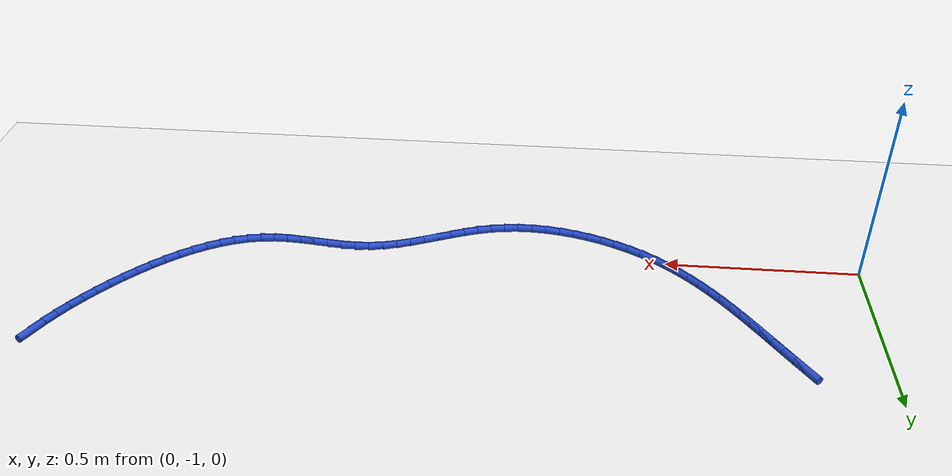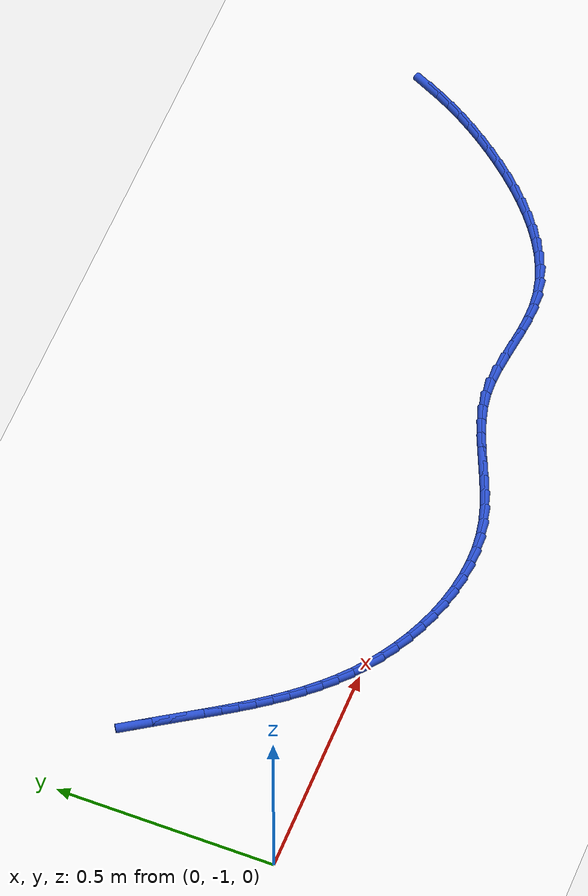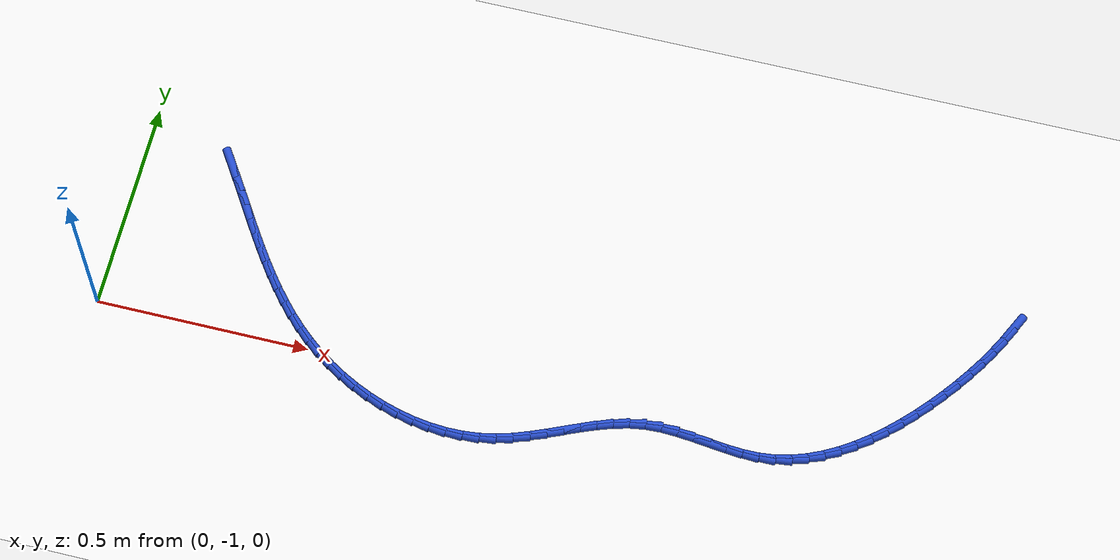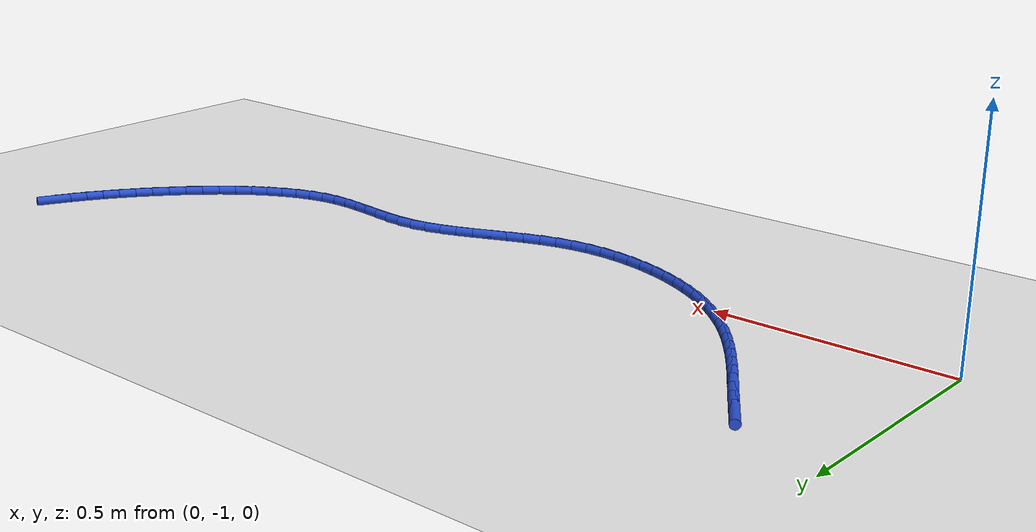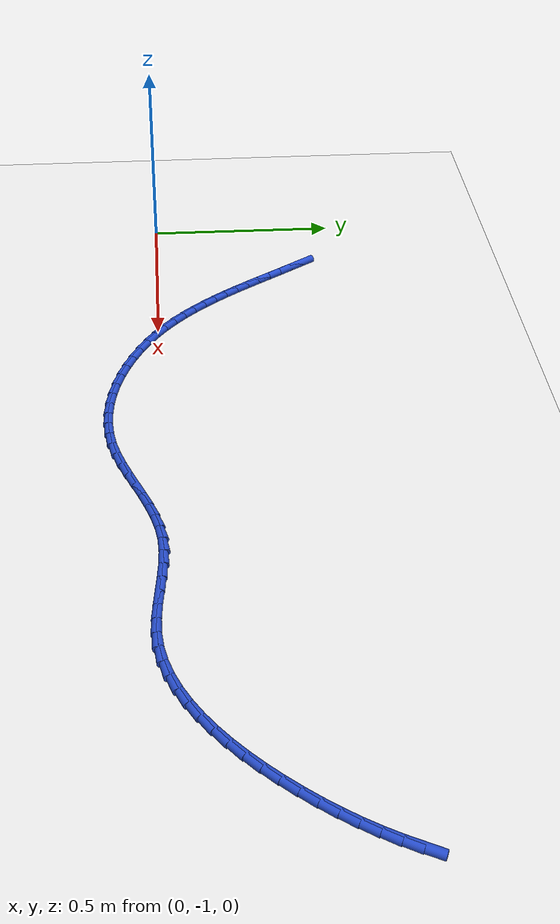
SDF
<sdf version="1.6">
 <world name="default">
  <model name="ground_plane">
   <static>1</static>
   <link name="link">
    <collision name="collision">
     <geometry><plane><normal>0 0 1</normal><size>100 100</size></plane></geometry>
     <surface><friction><ode><mu>100</mu><mu2>50</mu2></ode></friction></surface>
    </collision>
    <visual name="visual">
     <cast_shadows>0</cast_shadows>
     <geometry><plane><normal>0 0 1</normal><size>100 100</size></plane></geometry>
     <material>
      <script><uri>file://media/materials/scripts/gazebo.material</uri><name>Gazebo/WhiteGlow</name></script>
     </material>
    </visual>
   </link>
  </model>
  <model name="line">
   <link name="link_103">
    <pose>2.043815872189913 -0.5703931284753364 0.01 0 1.57 1.123098447111109</pose>
    <collision name="collision">
     <geometry><cylinder><radius>0.01</radius><length>0.08</length></cylinder></geometry>
    </collision>
    <visual name="visual">
     <material>
      <script><name>Gazebo/Blue</name><uri>file://media/materials/scripts/gazebo.material</uri></script>
     </material>
     <geometry><cylinder><radius>0.01</radius><length>0.08</length></cylinder></geometry>
    </visual>
   </link>
   <link name="link_104">
    <pose>2.0275189907006568 -0.6043294876389869 0.01 0 1.57 1.0777824176923856</pose>
    <collision name="collision">
     <geometry><cylinder><radius>0.01</radius><length>0.08</length></cylinder></geometry>
    </collision>
    <visual name="visual">
     <material>
      <script><name>Gazebo/Blue</name><uri>file://media/materials/scripts/gazebo.material</uri></script>
     </material>
     <geometry><cylinder><radius>0.01</radius><length>0.08</length></cylinder></geometry>
    </visual>
   </link>
   <link name="link_105">
    <pose>2.0095565148327093 -0.6377626169599107 0.01 0 1.57 1.03475909267125</pose>
    <collision name="collision">
     <geometry><cylinder><radius>0.01</radius><length>0.08</length></cylinder></geometry>
    </collision>
    <visual name="visual">
     <material>
      <script><name>Gazebo/Blue</name><uri>file://media/materials/scripts/gazebo.material</uri></script>
     </material>
     <geometry><cylinder><radius>0.01</radius><length>0.08</length></cylinder></geometry>
    </visual>
   </link>
   <link name="link_106">
    <pose>1.9900002288696008 -0.6706825698278273 0.01 0 1.57 0.9939791668865378</pose>
    <collision name="collision">
     <geometry><cylinder><radius>0.01</radius><length>0.08</length></cylinder></geometry>
    </collision>
    <visual name="visual">
     <material>
      <script><name>Gazebo/Blue</name><uri>file://media/materials/scripts/gazebo.material</uri></script>
     </material>
     <geometry><cylinder><radius>0.01</radius><length>0.08</length></cylinder></geometry>
    </visual>
   </link>
   <link name="link_107">
    <pose>1.9689219170948598 -0.7030793996324562 0.01 0 1.57 0.9553695027481955</pose>
    <collision name="collision">
     <geometry><cylinder><radius>0.01</radius><length>0.08</length></cylinder></geometry>
    </collision>
    <visual name="visual">
     <material>
      <script><name>Gazebo/Blue</name><uri>file://media/materials/scripts/gazebo.material</uri></script>
     </material>
     <geometry><cylinder><radius>0.01</radius><length>0.08</length></cylinder></geometry>
    </visual>
   </link>
   <link name="link_108">
    <pose>1.9463933637920148 -0.7349431597635171 0.01 0 1.57 0.9188396998957677</pose>
    <collision name="collision">
     <geometry><cylinder><radius>0.01</radius><length>0.08</length></cylinder></geometry>
    </collision>
    <visual name="visual">
     <material>
      <script><name>Gazebo/Blue</name><uri>file://media/materials/scripts/gazebo.material</uri></script>
     </material>
     <geometry><cylinder><radius>0.01</radius><length>0.08</length></cylinder></geometry>
    </visual>
   </link>
   <link name="link_109">
    <pose>1.922486353244594 -0.7662639036107297 0.01 0 1.57 0.8841720220053177</pose>
    <collision name="collision">
     <geometry><cylinder><radius>0.01</radius><length>0.08</length></cylinder></geometry>
    </collision>
    <visual name="visual">
     <material>
      <script><name>Gazebo/Blue</name><uri>file://media/materials/scripts/gazebo.material</uri></script>
     </material>
     <geometry><cylinder><radius>0.01</radius><length>0.08</length></cylinder></geometry>
    </visual>
   </link>
   <link name="link_110">
    <pose>1.8972721578205738 -0.7970250505231278 0.01 0 1.57 0.8484464112415967</pose>
    <collision name="collision">
     <geometry><cylinder><radius>0.01</radius><length>0.08</length></cylinder></geometry>
    </collision>
    <visual name="visual">
     <material>
      <script><name>Gazebo/Blue</name><uri>file://media/materials/scripts/gazebo.material</uri></script>
     </material>
     <geometry><cylinder><radius>0.01</radius><length>0.08</length></cylinder></geometry>
    </visual>
   </link>
   <link name="link_111">
    <pose>1.8708099795100261 -0.8270535968273974 0.01 0 1.57 0.80837160831257</pose>
    <collision name="collision">
     <geometry><cylinder><radius>0.01</radius><length>0.08</length></cylinder></geometry>
    </collision>
    <visual name="visual">
     <material>
      <script><name>Gazebo/Blue</name><uri>file://media/materials/scripts/gazebo.material</uri></script>
     </material>
     <geometry><cylinder><radius>0.01</radius><length>0.08</length></cylinder></geometry>
    </visual>
   </link>
   <link name="link_112">
    <pose>1.8431467829709898 -0.8560179522278298 0.01 0 1.57 0.7631190631436775</pose>
    <collision name="collision">
     <geometry><cylinder><radius>0.01</radius><length>0.08</length></cylinder></geometry>
    </collision>
    <visual name="visual">
     <material>
      <script><name>Gazebo/Blue</name><uri>file://media/materials/scripts/gazebo.material</uri></script>
     </material>
     <geometry><cylinder><radius>0.01</radius><length>0.08</length></cylinder></geometry>
    </visual>
   </link>
   <link name="link_113">
    <pose>1.8143289875531456 -0.8835794596424247 0.01 0 1.57 0.711875878609958</pose>
    <collision name="collision">
     <geometry><cylinder><radius>0.01</radius><length>0.08</length></cylinder></geometry>
    </collision>
    <visual name="visual">
     <material>
      <script><name>Gazebo/Blue</name><uri>file://media/materials/scripts/gazebo.material</uri></script>
     </material>
     <geometry><cylinder><radius>0.01</radius><length>0.08</length></cylinder></geometry>
    </visual>
   </link>
   <link name="link_114">
    <pose>1.7844030126061758 -0.9093994619891809 0.01 0 1.57 0.6537285058987314</pose>
    <collision name="collision">
     <geometry><cylinder><radius>0.01</radius><length>0.08</length></cylinder></geometry>
    </collision>
    <visual name="visual">
     <material>
      <script><name>Gazebo/Blue</name><uri>file://media/materials/scripts/gazebo.material</uri></script>
     </material>
     <geometry><cylinder><radius>0.01</radius><length>0.08</length></cylinder></geometry>
    </visual>
   </link>
   <link name="link_115">
    <pose>1.7534152774797613 -0.933139302186098 0.01 0 1.57 0.5876918309466606</pose>
    <collision name="collision">
     <geometry><cylinder><radius>0.01</radius><length>0.08</length></cylinder></geometry>
    </collision>
    <visual name="visual">
     <material>
      <script><name>Gazebo/Blue</name><uri>file://media/materials/scripts/gazebo.material</uri></script>
     </material>
     <geometry><cylinder><radius>0.01</radius><length>0.08</length></cylinder></geometry>
    </visual>
   </link>
   <link name="link_116">
    <pose>1.721412201523586 -0.9544603231511744 0.01 0 1.57 0.5127763423273524</pose>
    <collision name="collision">
     <geometry><cylinder><radius>0.01</radius><length>0.08</length></cylinder></geometry>
    </collision>
    <visual name="visual">
     <material>
      <script><name>Gazebo/Blue</name><uri>file://media/materials/scripts/gazebo.material</uri></script>
     </material>
     <geometry><cylinder><radius>0.01</radius><length>0.08</length></cylinder></geometry>
    </visual>
   </link>
   <link name="link_117">
    <pose>1.6884402040873308 -0.9730238678024103 0.01 0 1.57 0.42811363335625413</pose>
    <collision name="collision">
     <geometry><cylinder><radius>0.01</radius><length>0.08</length></cylinder></geometry>
    </collision>
    <visual name="visual">
     <material>
      <script><name>Gazebo/Blue</name><uri>file://media/materials/scripts/gazebo.material</uri></script>
     </material>
     <geometry><cylinder><radius>0.01</radius><length>0.08</length></cylinder></geometry>
    </visual>
   </link>
   <link name="link_118">
    <pose>1.6545457045206766 -0.9884912790578042 0.01 0 1.57 0.33315826096742956</pose>
    <collision name="collision">
     <geometry><cylinder><radius>0.01</radius><length>0.08</length></cylinder></geometry>
    </collision>
    <visual name="visual">
     <material>
      <script><name>Gazebo/Blue</name><uri>file://media/materials/scripts/gazebo.material</uri></script>
     </material>
     <geometry><cylinder><radius>0.01</radius><length>0.08</length></cylinder></geometry>
    </visual>
   </link>
   <link name="link_119">
    <pose>1.6197751221733063 -1.0005238998353556 0.01 0 1.57 0.22796483805336198</pose>
    <collision name="collision">
     <geometry><cylinder><radius>0.01</radius><length>0.08</length></cylinder></geometry>
    </collision>
    <visual name="visual">
     <material>
      <script><name>Gazebo/Blue</name><uri>file://media/materials/scripts/gazebo.material</uri></script>
     </material>
     <geometry><cylinder><radius>0.01</radius><length>0.08</length></cylinder></geometry>
    </visual>
   </link>
   <link name="link_120">
    <pose>1.5841748763949013 -1.0087830730530645 0.01 0 1.57 0.11365759164138071</pose>
    <collision name="collision">
     <geometry><cylinder><radius>0.01</radius><length>0.08</length></cylinder></geometry>
    </collision>
    <visual name="visual">
     <material>
      <script><name>Gazebo/Blue</name><uri>file://media/materials/scripts/gazebo.material</uri></script>
     </material>
     <geometry><cylinder><radius>0.01</radius><length>0.08</length></cylinder></geometry>
    </visual>
   </link>
   <link name="link_121">
    <pose>1.5477920055082115 -1.0129361612194263 0.01 0 1.57 0.006498672244915811</pose>
    <collision name="collision">
     <geometry><cylinder><radius>0.01</radius><length>0.08</length></cylinder></geometry>
    </collision>
    <visual name="visual">
     <material>
      <script><name>Gazebo/Blue</name><uri>file://media/materials/scripts/gazebo.material</uri></script>
     </material>
     <geometry><cylinder><radius>0.01</radius><length>0.08</length></cylinder></geometry>
    </visual>
   </link>
   <link name="link_122">
    <pose>1.5107276866386778 -1.0131770334706485 0.01 0 1.57 -0.06777273559633139</pose>
    <collision name="collision">
     <geometry><cylinder><radius>0.01</radius><length>0.08</length></cylinder></geometry>
    </collision>
    <visual name="visual">
     <material>
      <script><name>Gazebo/Blue</name><uri>file://media/materials/scripts/gazebo.material</uri></script>
     </material>
     <geometry><cylinder><radius>0.01</radius><length>0.08</length></cylinder></geometry>
    </visual>
   </link>
   <link name="link_123">
    <pose>1.4731785986890187 -1.0106283256720263 0.01 0 1.57 -0.10851315325571721</pose>
    <collision name="collision">
     <geometry><cylinder><radius>0.01</radius><length>0.08</length></cylinder></geometry>
    </collision>
    <visual name="visual">
     <material>
      <script><name>Gazebo/Blue</name><uri>file://media/materials/scripts/gazebo.material</uri></script>
     </material>
     <geometry><cylinder><radius>0.01</radius><length>0.08</length></cylinder></geometry>
    </visual>
   </link>
   <link name="link_124">
    <pose>1.435351157134636 -1.0065073630760424 0.01 0 1.57 -0.11755483858322786</pose>
    <collision name="collision">
     <geometry><cylinder><radius>0.01</radius><length>0.08</length></cylinder></geometry>
    </collision>
    <visual name="visual">
     <material>
      <script><name>Gazebo/Blue</name><uri>file://media/materials/scripts/gazebo.material</uri></script>
     </material>
     <geometry><cylinder><radius>0.01</radius><length>0.08</length></cylinder></geometry>
    </visual>
   </link>
   <link name="link_125">
    <pose>1.3974517774509339 -1.0020314709351805 0.01 0 1.57 -0.09539357169882068</pose>
    <collision name="collision">
     <geometry><cylinder><radius>0.01</radius><length>0.08</length></cylinder></geometry>
    </collision>
    <visual name="visual">
     <material>
      <script><name>Gazebo/Blue</name><uri>file://media/materials/scripts/gazebo.material</uri></script>
     </material>
     <geometry><cylinder><radius>0.01</radius><length>0.08</length></cylinder></geometry>
    </visual>
   </link>
   <link name="link_126">
    <pose>1.3596868751133138 -0.9984179745019228 0.01 0 1.57 -0.0409608060134946</pose>
    <collision name="collision">
     <geometry><cylinder><radius>0.01</radius><length>0.08</length></cylinder></geometry>
    </collision>
    <visual name="visual">
     <material>
      <script><name>Gazebo/Blue</name><uri>file://media/materials/scripts/gazebo.material</uri></script>
     </material>
     <geometry><cylinder><radius>0.01</radius><length>0.08</length></cylinder></geometry>
    </visual>
   </link>
   <link name="link_127">
    <pose>1.3222628655971809 -0.9968841990287531 0.01 0 1.57 0.0477789146812295</pose>
    <collision name="collision">
     <geometry><cylinder><radius>0.01</radius><length>0.08</length></cylinder></geometry>
    </collision>
    <visual name="visual">
     <material>
      <script><name>Gazebo/Blue</name><uri>file://media/materials/scripts/gazebo.material</uri></script>
     </material>
     <geometry><cylinder><radius>0.01</radius><length>0.08</length></cylinder></geometry>
    </visual>
   </link>
   <link name="link_128">
    <pose>1.2853861643729765 -0.9986474697404829 0.01 0 1.57 0.16229653123494242</pose>
    <collision name="collision">
     <geometry><cylinder><radius>0.01</radius><length>0.08</length></cylinder></geometry>
    </collision>
    <visual name="visual">
     <material>
      <script><name>Gazebo/Blue</name><uri>file://media/materials/scripts/gazebo.material</uri></script>
     </material>
     <geometry><cylinder><radius>0.01</radius><length>0.08</length></cylinder></geometry>
    </visual>
   </link>
   <link name="link_129">
    <pose>1.2491999702695455 -1.004572476990491 0.01 0 1.57 0.26230809489226437</pose>
    <collision name="collision">
     <geometry><cylinder><radius>0.01</radius><length>0.08</length></cylinder></geometry>
    </collision>
    <visual name="visual">
     <material>
      <script><name>Gazebo/Blue</name><uri>file://media/materials/scripts/gazebo.material</uri></script>
     </material>
     <geometry><cylinder><radius>0.01</radius><length>0.08</length></cylinder></geometry>
    </visual>
   </link>
   <link name="link_130">
    <pose>1.213597856213886 -1.0141314487111877 0.01 0 1.57 0.3368365037299574</pose>
    <collision name="collision">
     <geometry><cylinder><radius>0.01</radius><length>0.08</length></cylinder></geometry>
    </collision>
    <visual name="visual">
     <material>
      <script><name>Gazebo/Blue</name><uri>file://media/materials/scripts/gazebo.material</uri></script>
     </material>
     <geometry><cylinder><radius>0.01</radius><length>0.08</length></cylinder></geometry>
    </visual>
   </link>
   <link name="link_131">
    <pose>1.1784117884674805 -1.0264529587270788 0.01 0 1.57 0.3863502772399196</pose>
    <collision name="collision">
     <geometry><cylinder><radius>0.01</radius><length>0.08</length></cylinder></geometry>
    </collision>
    <visual name="visual">
     <material>
      <script><name>Gazebo/Blue</name><uri>file://media/materials/scripts/gazebo.material</uri></script>
     </material>
     <geometry><cylinder><radius>0.01</radius><length>0.08</length></cylinder></geometry>
    </visual>
   </link>
   <link name="link_132">
    <pose>1.143473733291814 -1.0406655808626701 0.01 0 1.57 0.4119745226320878</pose>
    <collision name="collision">
     <geometry><cylinder><radius>0.01</radius><length>0.08</length></cylinder></geometry>
    </collision>
    <visual name="visual">
     <material>
      <script><name>Gazebo/Blue</name><uri>file://media/materials/scripts/gazebo.material</uri></script>
     </material>
     <geometry><cylinder><radius>0.01</radius><length>0.08</length></cylinder></geometry>
    </visual>
   </link>
   <link name="link_133">
    <pose>1.1086156569483698 -1.0558978889424684 0.01 0 1.57 0.4146092416915735</pose>
    <collision name="collision">
     <geometry><cylinder><radius>0.01</radius><length>0.08</length></cylinder></geometry>
    </collision>
    <visual name="visual">
     <material>
      <script><name>Gazebo/Blue</name><uri>file://media/materials/scripts/gazebo.material</uri></script>
     </material>
     <geometry><cylinder><radius>0.01</radius><length>0.08</length></cylinder></geometry>
    </visual>
   </link>
   <link name="link_134">
    <pose>1.0736695256986315 -1.0712784567909794 0.01 0 1.57 0.3945444406533059</pose>
    <collision name="collision">
     <geometry><cylinder><radius>0.01</radius><length>0.08</length></cylinder></geometry>
    </collision>
    <visual name="visual">
     <material>
      <script><name>Gazebo/Blue</name><uri>file://media/materials/scripts/gazebo.material</uri></script>
     </material>
     <geometry><cylinder><radius>0.01</radius><length>0.08</length></cylinder></geometry>
    </visual>
   </link>
   <link name="link_135">
    <pose>1.0384673058040836 -1.0859358582327097 0.01 0 1.57 0.3514402584502425</pose>
    <collision name="collision">
     <geometry><cylinder><radius>0.01</radius><length>0.08</length></cylinder></geometry>
    </collision>
    <visual name="visual">
     <material>
      <script><name>Gazebo/Blue</name><uri>file://media/materials/scripts/gazebo.material</uri></script>
     </material>
     <geometry><cylinder><radius>0.01</radius><length>0.08</length></cylinder></geometry>
    </visual>
   </link>
   <link name="link_136">
    <pose>1.0028409635262088 -1.098998667092165 0.01 0 1.57 0.2846351685458974</pose>
    <collision name="collision">
     <geometry><cylinder><radius>0.01</radius><length>0.08</length></cylinder></geometry>
    </collision>
    <visual name="visual">
     <material>
      <script><name>Gazebo/Blue</name><uri>file://media/materials/scripts/gazebo.material</uri></script>
     </material>
     <geometry><cylinder><radius>0.01</radius><length>0.08</length></cylinder></geometry>
    </visual>
   </link>
   <link name="link_137">
    <pose>0.9666224651264909 -1.109595457193852 0.01 0 1.57 0.19575811172062058</pose>
    <collision name="collision">
     <geometry><cylinder><radius>0.01</radius><length>0.08</length></cylinder></geometry>
    </collision>
    <visual name="visual">
     <material>
      <script><name>Gazebo/Blue</name><uri>file://media/materials/scripts/gazebo.material</uri></script>
     </material>
     <geometry><cylinder><radius>0.01</radius><length>0.08</length></cylinder></geometry>
    </visual>
   </link>
   <link name="link_138">
    <pose>0.9296694575946891 -1.1169231502674717 0.01 0 1.57 0.10288400276663212</pose>
    <collision name="collision">
     <geometry><cylinder><radius>0.01</radius><length>0.08</length></cylinder></geometry>
    </collision>
    <visual name="visual">
     <material>
      <script><name>Gazebo/Blue</name><uri>file://media/materials/scripts/gazebo.material</uri></script>
     </material>
     <geometry><cylinder><radius>0.01</radius><length>0.08</length></cylinder></geometry>
    </visual>
   </link>
   <link name="link_139">
    <pose>0.8920748260101132 -1.120804741823473 0.01 0 1.57 0.015638144763738884</pose>
    <collision name="collision">
     <geometry><cylinder><radius>0.01</radius><length>0.08</length></cylinder></geometry>
    </collision>
    <visual name="visual">
     <material>
      <script><name>Gazebo/Blue</name><uri>file://media/materials/scripts/gazebo.material</uri></script>
     </material>
     <geometry><cylinder><radius>0.01</radius><length>0.08</length></cylinder></geometry>
    </visual>
   </link>
   <link name="link_140">
    <pose>0.8540577325080257 -1.1213993071032367 0.01 0 1.57 -0.06610515155281814</pose>
    <collision name="collision">
     <geometry><cylinder><radius>0.01</radius><length>0.08</length></cylinder></geometry>
    </collision>
    <visual name="visual">
     <material>
      <script><name>Gazebo/Blue</name><uri>file://media/materials/scripts/gazebo.material</uri></script>
     </material>
     <geometry><cylinder><radius>0.01</radius><length>0.08</length></cylinder></geometry>
    </visual>
   </link>
   <link name="link_141">
    <pose>0.8158385468739566 -1.1188691354456977 0.01 0 1.57 -0.14280371518403365</pose>
    <collision name="collision">
     <geometry><cylinder><radius>0.01</radius><length>0.08</length></cylinder></geometry>
    </collision>
    <visual name="visual">
     <material>
      <script><name>Gazebo/Blue</name><uri>file://media/materials/scripts/gazebo.material</uri></script>
     </material>
     <geometry><cylinder><radius>0.01</radius><length>0.08</length></cylinder></geometry>
    </visual>
   </link>
   <link name="link_142">
    <pose>0.7776376388934343 -1.1133765161897908 0.01 0 1.57 -0.21506941305061053</pose>
    <collision name="collision">
     <geometry><cylinder><radius>0.01</radius><length>0.08</length></cylinder></geometry>
    </collision>
    <visual name="visual">
     <material>
      <script><name>Gazebo/Blue</name><uri>file://media/materials/scripts/gazebo.material</uri></script>
     </material>
     <geometry><cylinder><radius>0.01</radius><length>0.08</length></cylinder></geometry>
    </visual>
   </link>
   <link name="link_143">
    <pose>0.7396753783519892 -1.1050837386744505 0.01 0 1.57 -0.28360243378446776</pose>
    <collision name="collision">
     <geometry><cylinder><radius>0.01</radius><length>0.08</length></cylinder></geometry>
    </collision>
    <visual name="visual">
     <material>
      <script><name>Gazebo/Blue</name><uri>file://media/materials/scripts/gazebo.material</uri></script>
     </material>
     <geometry><cylinder><radius>0.01</radius><length>0.08</length></cylinder></geometry>
    </visual>
   </link>
   <link name="link_144">
    <pose>0.7021721350351503 -1.0941530922386111 0.01 0 1.57 -0.34914829972348743</pose>
    <collision name="collision">
     <geometry><cylinder><radius>0.01</radius><length>0.08</length></cylinder></geometry>
    </collision>
    <visual name="visual">
     <material>
      <script><name>Gazebo/Blue</name><uri>file://media/materials/scripts/gazebo.material</uri></script>
     </material>
     <geometry><cylinder><radius>0.01</radius><length>0.08</length></cylinder></geometry>
    </visual>
   </link>
   <link name="link_145">
    <pose>0.6653482787284467 -1.0807468662212079 0.01 0 1.57 -0.4124740545801683</pose>
    <collision name="collision">
     <geometry><cylinder><radius>0.01</radius><length>0.08</length></cylinder></geometry>
    </collision>
    <visual name="visual">
     <material>
      <script><name>Gazebo/Blue</name><uri>file://media/materials/scripts/gazebo.material</uri></script>
     </material>
     <geometry><cylinder><radius>0.01</radius><length>0.08</length></cylinder></geometry>
    </visual>
   </link>
   <link name="link_146">
    <pose>0.629424179217408 -1.0650273499611749 0.01 0 1.57 -0.4743591090278277</pose>
    <collision name="collision">
     <geometry><cylinder><radius>0.01</radius><length>0.08</length></cylinder></geometry>
    </collision>
    <visual name="visual">
     <material>
      <script><name>Gazebo/Blue</name><uri>file://media/materials/scripts/gazebo.material</uri></script>
     </material>
     <geometry><cylinder><radius>0.01</radius><length>0.08</length></cylinder></geometry>
    </visual>
   </link>
   <link name="link_147">
    <pose>0.5946202062875628 -1.0471568327974465 0.01 0 1.57 -0.5355966649068334</pose>
    <collision name="collision">
     <geometry><cylinder><radius>0.01</radius><length>0.08</length></cylinder></geometry>
    </collision>
    <visual name="visual">
     <material>
      <script><name>Gazebo/Blue</name><uri>file://media/materials/scripts/gazebo.material</uri></script>
     </material>
     <geometry><cylinder><radius>0.01</radius><length>0.08</length></cylinder></geometry>
    </visual>
   </link>
   <link name="link_148">
    <pose>0.5611567297244406 -1.0272976040689576 0.01 0 1.57 -0.5970025032215249</pose>
    <collision name="collision">
     <geometry><cylinder><radius>0.01</radius><length>0.08</length></cylinder></geometry>
    </collision>
    <visual name="visual">
     <material>
      <script><name>Gazebo/Blue</name><uri>file://media/materials/scripts/gazebo.material</uri></script>
     </material>
     <geometry><cylinder><radius>0.01</radius><length>0.08</length></cylinder></geometry>
    </visual>
   </link>
   <link name="link_149">
    <pose>0.5292541193135718 -1.005611953114643 0.01 0 1.57 -0.6590658529135419</pose>
    <collision name="collision">
     <geometry><cylinder><radius>0.01</radius><length>0.08</length></cylinder></geometry>
    </collision>
    <visual name="visual">
     <material>
      <script><name>Gazebo/Blue</name><uri>file://media/materials/scripts/gazebo.material</uri></script>
     </material>
     <geometry><cylinder><radius>0.01</radius><length>0.08</length></cylinder></geometry>
    </visual>
   </link>
   <link name="link_150">
    <pose>0.4991089910280444 -0.9822612601131822 0.01 0 1.57 -0.7186761599216699</pose>
    <collision name="collision">
     <geometry><cylinder><radius>0.01</radius><length>0.08</length></cylinder></geometry>
    </collision>
    <visual name="visual">
     <material>
      <script><name>Gazebo/Blue</name><uri>file://media/materials/scripts/gazebo.material</uri></script>
     </material>
     <geometry><cylinder><radius>0.01</radius><length>0.08</length></cylinder></geometry>
    </visual>
   </link>
   <link name="link_151">
    <pose>0.47068500154511367 -0.9573979888921037 0.01 0 1.57 -0.7732931803973433</pose>
    <collision name="collision">
     <geometry><cylinder><radius>0.01</radius><length>0.08</length></cylinder></geometry>
    </collision>
    <visual name="visual">
     <material>
      <script><name>Gazebo/Blue</name><uri>file://media/materials/scripts/gazebo.material</uri></script>
     </material>
     <geometry><cylinder><radius>0.01</radius><length>0.08</length></cylinder></geometry>
    </visual>
   </link>
   <link name="link_152">
    <pose>0.44381375975897697 -0.9311695492440758 0.01 0 1.57 -0.8223677018696895</pose>
    <collision name="collision">
     <geometry><cylinder><radius>0.01</radius><length>0.08</length></cylinder></geometry>
    </collision>
    <visual name="visual">
     <material>
      <script><name>Gazebo/Blue</name><uri>file://media/materials/scripts/gazebo.material</uri></script>
     </material>
     <geometry><cylinder><radius>0.01</radius><length>0.08</length></cylinder></geometry>
    </visual>
   </link>
   <link name="link_153">
    <pose>0.41832536535742 -0.9037232931979663 0.01 0 1.57 -0.8655650429699907</pose>
    <collision name="collision">
     <geometry><cylinder><radius>0.01</radius><length>0.08</length></cylinder></geometry>
    </collision>
    <visual name="visual">
     <material>
      <script><name>Gazebo/Blue</name><uri>file://media/materials/scripts/gazebo.material</uri></script>
     </material>
     <geometry><cylinder><radius>0.01</radius><length>0.08</length></cylinder></geometry>
    </visual>
   </link>
   <link name="link_154">
    <pose>0.3940499180282283 -0.8752065727826418 0.01 0 1.57 -0.9027072515862394</pose>
    <collision name="collision">
     <geometry><cylinder><radius>0.01</radius><length>0.08</length></cylinder></geometry>
    </collision>
    <visual name="visual">
     <material>
      <script><name>Gazebo/Blue</name><uri>file://media/materials/scripts/gazebo.material</uri></script>
     </material>
     <geometry><cylinder><radius>0.01</radius><length>0.08</length></cylinder></geometry>
    </visual>
   </link>
   <link name="link_155">
    <pose>0.3708175174591891 -0.8457667400269712 0.01 0 1.57 -0.9337320869078803</pose>
    <collision name="collision">
     <geometry><cylinder><radius>0.01</radius><length>0.08</length></cylinder></geometry>
    </collision>
    <visual name="visual">
     <material>
      <script><name>Gazebo/Blue</name><uri>file://media/materials/scripts/gazebo.material</uri></script>
     </material>
     <geometry><cylinder><radius>0.01</radius><length>0.08</length></cylinder></geometry>
    </visual>
   </link>
   <link name="link_156">
    <pose>0.3484582633380876 -0.815551146959821 0.01 0 1.57 -0.9586529178140579</pose>
    <collision name="collision">
     <geometry><cylinder><radius>0.01</radius><length>0.08</length></cylinder></geometry>
    </collision>
    <visual name="visual">
     <material>
      <script><name>Gazebo/Blue</name><uri>file://media/materials/scripts/gazebo.material</uri></script>
     </material>
     <geometry><cylinder><radius>0.01</radius><length>0.08</length></cylinder></geometry>
    </visual>
   </link>
   <link name="link_157">
    <pose>0.32680225535271 -0.7847071456100592 0.01 0 1.57 -0.977523850884411</pose>
    <collision name="collision">
     <geometry><cylinder><radius>0.01</radius><length>0.08</length></cylinder></geometry>
    </collision>
    <visual name="visual">
     <material>
      <script><name>Gazebo/Blue</name><uri>file://media/materials/scripts/gazebo.material</uri></script>
     </material>
     <geometry><cylinder><radius>0.01</radius><length>0.08</length></cylinder></geometry>
    </visual>
   </link>
   <link name="link_158">
    <pose>0.30567959319084237 -0.7533820880065528 0.01 0 1.57 -0.9904119930002606</pose>
    <collision name="collision">
     <geometry><cylinder><radius>0.01</radius><length>0.08</length></cylinder></geometry>
    </collision>
    <visual name="visual">
     <material>
      <script><name>Gazebo/Blue</name><uri>file://media/materials/scripts/gazebo.material</uri></script>
     </material>
     <geometry><cylinder><radius>0.01</radius><length>0.08</length></cylinder></geometry>
    </visual>
   </link>
   <link name="link_159">
    <pose>0.28492037654027014 -0.721723326178169 0.01 0 1.57 -0.9973771777958361</pose>
    <collision name="collision">
     <geometry><cylinder><radius>0.01</radius><length>0.08</length></cylinder></geometry>
    </collision>
    <visual name="visual">
     <material>
      <script><name>Gazebo/Blue</name><uri>file://media/materials/scripts/gazebo.material</uri></script>
     </material>
     <geometry><cylinder><radius>0.01</radius><length>0.08</length></cylinder></geometry>
    </visual>
   </link>
   <link name="link_160">
    <pose>0.2643547050887803 -0.6898782121537765 0.01 0 1.57 -0.9984587073465204</pose>
    <collision name="collision">
     <geometry><cylinder><radius>0.01</radius><length>0.08</length></cylinder></geometry>
    </collision>
    <visual name="visual">
     <material>
      <script><name>Gazebo/Blue</name><uri>file://media/materials/scripts/gazebo.material</uri></script>
     </material>
     <geometry><cylinder><radius>0.01</radius><length>0.08</length></cylinder></geometry>
    </visual>
   </link>
   <link name="link_161">
    <pose>0.24381267852415844 -0.6579940979622421 0.01 0 1.57 -0.9939534324434667</pose>
    <collision name="collision">
     <geometry><cylinder><radius>0.01</radius><length>0.08</length></cylinder></geometry>
    </collision>
    <visual name="visual">
     <material>
      <script><name>Gazebo/Blue</name><uri>file://media/materials/scripts/gazebo.material</uri></script>
     </material>
     <geometry><cylinder><radius>0.01</radius><length>0.08</length></cylinder></geometry>
    </visual>
   </link>
   <link name="link_162">
    <pose>0.22313337248527526 -0.6262123190798197 0.01 0 1.57 -0.9897718285684325</pose>
    <collision name="collision">
     <geometry><cylinder><radius>0.01</radius><length>0.08</length></cylinder></geometry>
    </collision>
    <visual name="visual">
     <material>
      <script><name>Gazebo/Blue</name><uri>file://media/materials/scripts/gazebo.material</uri></script>
     </material>
     <geometry><cylinder><radius>0.01</radius><length>0.08</length></cylinder></geometry>
    </visual>
   </link>
   <link name="link_163">
    <pose>0.2023423205828467 -0.5945492287733901 0.01 0 1.57 -0.9915083541220192</pose>
    <collision name="collision">
     <geometry><cylinder><radius>0.01</radius><length>0.08</length></cylinder></geometry>
    </collision>
    <visual name="visual">
     <material>
      <script><name>Gazebo/Blue</name><uri>file://media/materials/scripts/gazebo.material</uri></script>
     </material>
     <geometry><cylinder><radius>0.01</radius><length>0.08</length></cylinder></geometry>
    </visual>
   </link>
  </model>
 </world>
</sdf>
